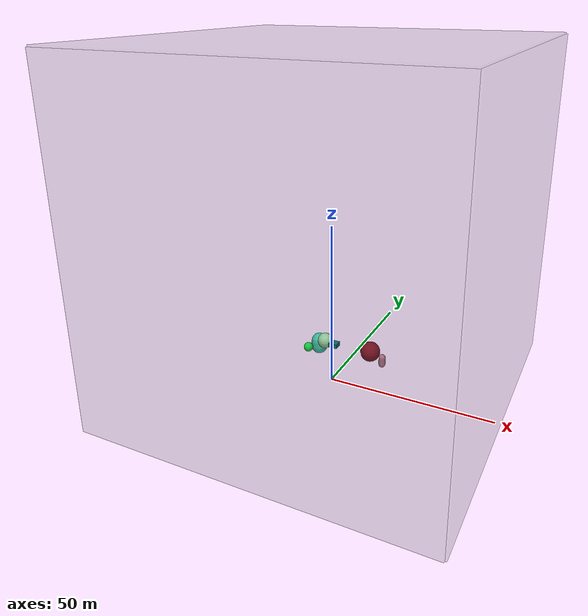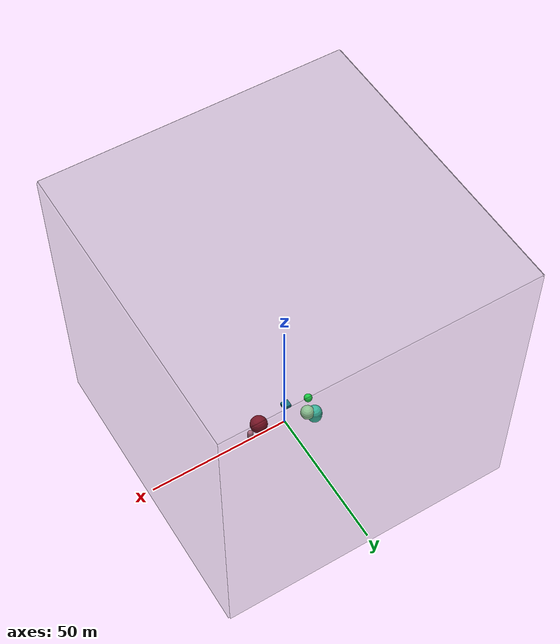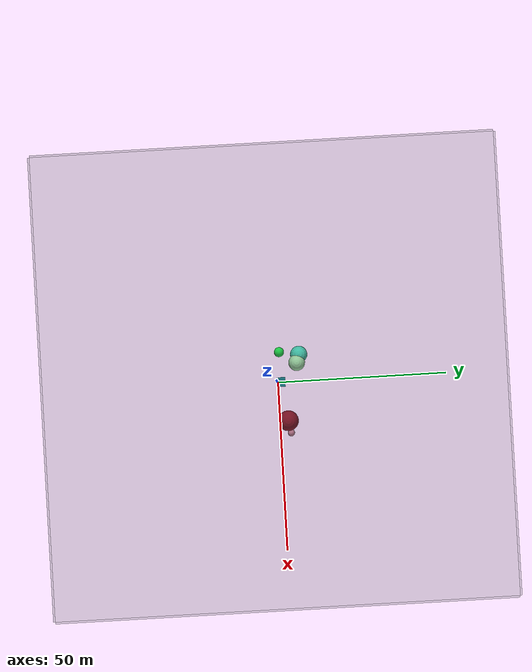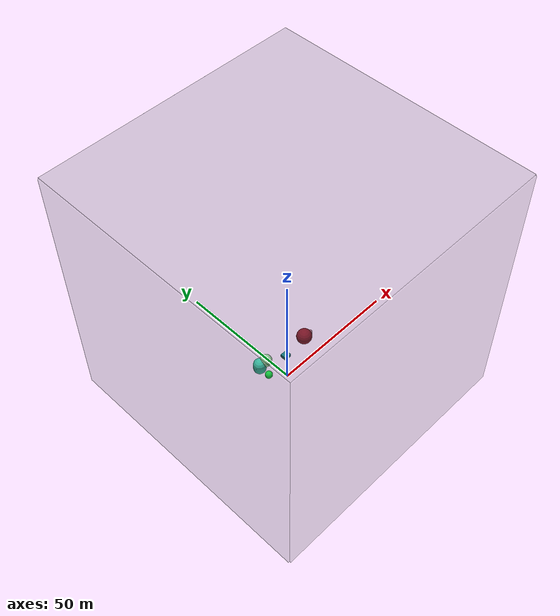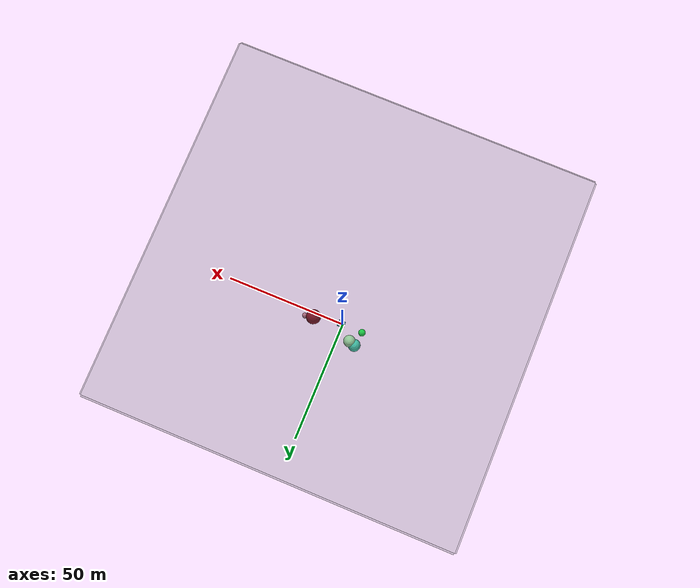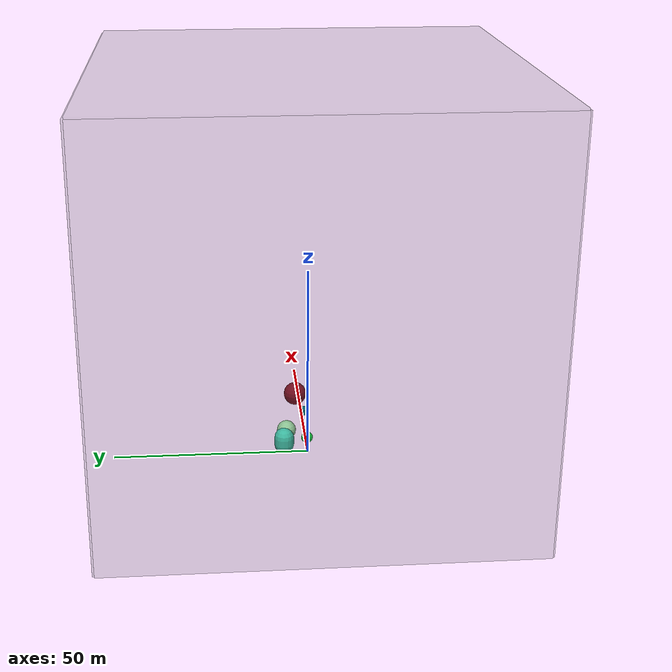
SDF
<!-- seed: 1722830644 -->
<sdf version='1.11'>
  <world name='world_0'>
    <gravity>0 0 -9.8066499999999994</gravity>
    <magnetic_field>5.5644999999999998e-06 2.2875799999999999e-05 -4.2388400000000002e-05</magnetic_field>
    <wind>
      <linear_velocity>9 10 4</linear_velocity>
    </wind>
    <physics default='false' type='ode'>
      <max_step_size>0.001</max_step_size>
      <real_time_factor>1</real_time_factor>
      <max_contacts>20</max_contacts>
    </physics>
    <model name='model_192'>
      <static>true</static>
      <self_collide>true</self_collide>
      <allow_auto_disable>true</allow_auto_disable>
      <enable_wind>false</enable_wind>
      <pose>-8.1267665934456481 1.7310664373982085 4.229556648156735 0 0 0</pose>
      <link name='link_861'>
        <pose>2.8632482332677593 4.150569444268017 5.0485948763134747 0 0 0</pose>
        <inertial>
          <pose>0 0 0 0 0 0</pose>
          <mass>1</mass>
          <inertia>
            <ixx>1</ixx>
            <ixy>0</ixy>
            <ixz>0</ixz>
            <iyy>1</iyy>
            <iyz>0</iyz>
            <izz>1</izz>
          </inertia>
        </inertial>
        <enable_wind>false</enable_wind>
        <collision name='collision_861'>
          <pose>0 0 0 0 0 0</pose>
          <geometry>
            <sphere>
              <radius>2.3902149975041675</radius>
            </sphere>
          </geometry>
          <surface>
            <contact>
              <collide_bitmask>255</collide_bitmask>
            </contact>
            <friction>
              <ode>
                <mu>1</mu>
                <mu2>1</mu2>
                <slip1>0</slip1>
                <slip2>0</slip2>
                <fdir1>0 0 0</fdir1>
              </ode>
            </friction>
          </surface>
        </collision>
        <visual name='visual_861'>
          <pose>0 0 0 0 0 0</pose>
          <geometry>
            <sphere>
              <radius>2.3902149975041675</radius>
            </sphere>
          </geometry>
          <cast_shadows>true</cast_shadows>
          <laser_retro>0</laser_retro>
          <transparency>0</transparency>
          <visibility_flags>4294967295</visibility_flags>
          <material>
            <ambient>0.664272249 0.922820389 0.69460994 1</ambient>
            <diffuse>0.664272249 0.922820389 0.69460994 1</diffuse>
            <specular>0 0 0 1</specular>
            <emissive>0 0 0 1</emissive>
            <render_order>0</render_order>
            <lighting>true</lighting>
            <double_sided>false</double_sided>
            <shader type='pixel'/>
          </material>
        </visual>
      </link>
      <link name='link_862'>
        <pose>-0.4770296230094484 -0.82106432591989886 4.4962877202266585 0 0 0</pose>
        <inertial>
          <pose>0 0 0 0 0 0</pose>
          <mass>1</mass>
          <inertia>
            <ixx>1</ixx>
            <ixy>0</ixy>
            <ixz>0</ixz>
            <iyy>1</iyy>
            <iyz>0</iyz>
            <izz>1</izz>
          </inertia>
        </inertial>
        <enable_wind>false</enable_wind>
        <collision name='collision_862'>
          <pose>0 0 0 0 0 0</pose>
          <geometry>
            <sphere>
              <radius>1.4177981688991268</radius>
            </sphere>
          </geometry>
          <surface>
            <contact>
              <collide_bitmask>255</collide_bitmask>
            </contact>
            <friction>
              <ode>
                <mu>1</mu>
                <mu2>1</mu2>
                <slip1>0</slip1>
                <slip2>0</slip2>
                <fdir1>0 0 0</fdir1>
              </ode>
            </friction>
          </surface>
        </collision>
        <visual name='visual_862'>
          <pose>0 0 0 0 0 0</pose>
          <geometry>
            <sphere>
              <radius>1.4177981688991268</radius>
            </sphere>
          </geometry>
          <cast_shadows>true</cast_shadows>
          <laser_retro>0</laser_retro>
          <transparency>0</transparency>
          <visibility_flags>4294967295</visibility_flags>
          <material>
            <ambient>0.0885012299 0.923571587 0.283256233 1</ambient>
            <diffuse>0.0885012299 0.923571587 0.283256233 1</diffuse>
            <specular>0 0 0 1</specular>
            <emissive>0 0 0 1</emissive>
            <render_order>0</render_order>
            <lighting>true</lighting>
            <double_sided>false</double_sided>
            <shader type='pixel'/>
          </material>
        </visual>
      </link>
      <link name='link_863'>
        <pose>0.50175265030856409 4.8631713575517068 3.2424583989642852 0 0 0</pose>
        <inertial>
          <pose>0 0 0 0 0 0</pose>
          <mass>1</mass>
          <inertia>
            <ixx>1</ixx>
            <ixy>0</ixy>
            <ixz>0</ixz>
            <iyy>1</iyy>
            <iyz>0</iyz>
            <izz>1</izz>
          </inertia>
        </inertial>
        <enable_wind>false</enable_wind>
        <collision name='collision_863'>
          <pose>0 0 0 0 0 0</pose>
          <geometry>
            <capsule>
              <radius>2.4691500168433955</radius>
              <length>1.742316190218073</length>
            </capsule>
          </geometry>
          <surface>
            <contact>
              <collide_bitmask>255</collide_bitmask>
            </contact>
            <friction>
              <ode>
                <mu>1</mu>
                <mu2>1</mu2>
                <slip1>0</slip1>
                <slip2>0</slip2>
                <fdir1>0 0 0</fdir1>
              </ode>
            </friction>
          </surface>
        </collision>
        <visual name='visual_863'>
          <pose>0 0 0 0 0 0</pose>
          <geometry>
            <capsule>
              <radius>2.4691500168433955</radius>
              <length>1.742316190218073</length>
            </capsule>
          </geometry>
          <cast_shadows>true</cast_shadows>
          <laser_retro>0</laser_retro>
          <transparency>0</transparency>
          <visibility_flags>4294967295</visibility_flags>
          <material>
            <ambient>0.267997622 0.867559254 0.750647068 1</ambient>
            <diffuse>0.267997622 0.867559254 0.750647068 1</diffuse>
            <specular>0 0 0 1</specular>
            <emissive>0 0 0 1</emissive>
            <render_order>0</render_order>
            <lighting>true</lighting>
            <double_sided>false</double_sided>
            <shader type='pixel'/>
          </material>
        </visual>
      </link>
      <joint name='joint_574' type='revolute'>
        <pose>0 0 0 0 0 0</pose>
        <parent>link_863</parent>
        <child>link_862</child>
        <axis>
          <xyz>0.69161695415816615 0.13278662841349295 0.7099533083489068</xyz>
          <limit>
            <lower>-inf</lower>
            <upper>inf</upper>
            <effort>inf</effort>
            <velocity>4.8633908988645196</velocity>
            <stiffness>100000000</stiffness>
            <dissipation>1</dissipation>
          </limit>
          <dynamics>
            <spring_reference>0</spring_reference>
            <spring_stiffness>0</spring_stiffness>
            <damping>0</damping>
            <friction>0</friction>
          </dynamics>
        </axis>
        <axis2>
          <xyz>0.54521877702104704 0.09432490165678678 0.83297016639920018</xyz>
          <limit>
            <lower>-inf</lower>
            <upper>inf</upper>
            <effort>inf</effort>
            <velocity>1.4744997987777375</velocity>
            <stiffness>100000000</stiffness>
            <dissipation>1</dissipation>
          </limit>
          <dynamics>
            <spring_reference>0</spring_reference>
            <spring_stiffness>0</spring_stiffness>
            <damping>0</damping>
            <friction>0</friction>
          </dynamics>
        </axis2>
      </joint>
      <joint name='joint_575' type='revolute'>
        <pose>0 0 0 0 0 0</pose>
        <parent>link_863</parent>
        <child>link_862</child>
        <axis>
          <xyz>0.26217133929081321 0.96438746000182785 0.034971643451291376</xyz>
          <limit>
            <lower>-inf</lower>
            <upper>inf</upper>
            <effort>inf</effort>
            <velocity>0.55892608577691183</velocity>
            <stiffness>100000000</stiffness>
            <dissipation>1</dissipation>
          </limit>
          <dynamics>
            <spring_reference>0</spring_reference>
            <spring_stiffness>0</spring_stiffness>
            <damping>0</damping>
            <friction>0</friction>
          </dynamics>
        </axis>
        <axis2>
          <xyz>0.32625812828144252 0.89971194020729295 0.28995526961708801</xyz>
          <limit>
            <lower>-inf</lower>
            <upper>inf</upper>
            <effort>inf</effort>
            <velocity>7.3626436983963286</velocity>
            <stiffness>100000000</stiffness>
            <dissipation>1</dissipation>
          </limit>
          <dynamics>
            <spring_reference>0</spring_reference>
            <spring_stiffness>0</spring_stiffness>
            <damping>0</damping>
            <friction>0</friction>
          </dynamics>
        </axis2>
      </joint>
    </model>
    <model name='model_193'>
      <static>false</static>
      <self_collide>true</self_collide>
      <allow_auto_disable>true</allow_auto_disable>
      <enable_wind>false</enable_wind>
      <pose>7.3142285350623517 5.4711880707363232 6.8352531634356817 0 0 0</pose>
      <link name='link_864'>
        <pose>7.6398290120932231 -2.271843046277926 1.8277624188501762 0 0 0</pose>
        <inertial>
          <pose>0 0 0 0 0 0</pose>
          <mass>1</mass>
          <inertia>
            <ixx>1</ixx>
            <ixy>0</ixy>
            <ixz>0</ixz>
            <iyy>1</iyy>
            <iyz>0</iyz>
            <izz>1</izz>
          </inertia>
        </inertial>
        <enable_wind>false</enable_wind>
        <collision name='collision_864'>
          <pose>0 0 0 0 0 0</pose>
          <geometry>
            <capsule>
              <radius>1.0019158932273204</radius>
              <length>2.1546517352572367</length>
            </capsule>
          </geometry>
          <surface>
            <contact>
              <collide_bitmask>255</collide_bitmask>
            </contact>
            <friction>
              <ode>
                <mu>1</mu>
                <mu2>1</mu2>
                <slip1>0</slip1>
                <slip2>0</slip2>
                <fdir1>0 0 0</fdir1>
              </ode>
            </friction>
          </surface>
        </collision>
        <visual name='visual_864'>
          <pose>0 0 0 0 0 0</pose>
          <geometry>
            <capsule>
              <radius>1.0019158932273204</radius>
              <length>2.1546517352572367</length>
            </capsule>
          </geometry>
          <cast_shadows>true</cast_shadows>
          <laser_retro>0</laser_retro>
          <transparency>0</transparency>
          <visibility_flags>4294967295</visibility_flags>
          <material>
            <ambient>0.783004045 0.480386436 0.580207705 1</ambient>
            <diffuse>0.783004045 0.480386436 0.580207705 1</diffuse>
            <specular>0 0 0 1</specular>
            <emissive>0 0 0 1</emissive>
            <render_order>0</render_order>
            <lighting>true</lighting>
            <double_sided>false</double_sided>
            <shader type='pixel'/>
          </material>
        </visual>
      </link>
      <link name='link_865'>
        <pose>-7.1672427866780941 -4.4618880058677597 4.8878558837985997 0 0 0</pose>
        <inertial>
          <pose>0 0 0 0 0 0</pose>
          <mass>1</mass>
          <inertia>
            <ixx>1</ixx>
            <ixy>0</ixy>
            <ixz>0</ixz>
            <iyy>1</iyy>
            <iyz>0</iyz>
            <izz>1</izz>
          </inertia>
        </inertial>
        <enable_wind>false</enable_wind>
        <collision name='collision_865'>
          <pose>0 0 0 0 0 0</pose>
          <geometry>
            <box>
              <size>2.6866038648543134 2.4336528252930951 1.2804812812571653</size>
            </box>
          </geometry>
          <surface>
            <contact>
              <collide_bitmask>255</collide_bitmask>
            </contact>
            <friction>
              <ode>
                <mu>1</mu>
                <mu2>1</mu2>
                <slip1>0</slip1>
                <slip2>0</slip2>
                <fdir1>0 0 0</fdir1>
              </ode>
            </friction>
          </surface>
        </collision>
        <visual name='visual_865'>
          <pose>0 0 0 0 0 0</pose>
          <geometry>
            <box>
              <size>2.6866038648543134 2.4336528252930951 1.2804812812571653</size>
            </box>
          </geometry>
          <cast_shadows>true</cast_shadows>
          <laser_retro>0</laser_retro>
          <transparency>0</transparency>
          <visibility_flags>4294967295</visibility_flags>
          <material>
            <ambient>0.0543567762 0.488732189 0.535226047 1</ambient>
            <diffuse>0.0543567762 0.488732189 0.535226047 1</diffuse>
            <specular>0 0 0 1</specular>
            <emissive>0 0 0 1</emissive>
            <render_order>0</render_order>
            <lighting>true</lighting>
            <double_sided>false</double_sided>
            <shader type='pixel'/>
          </material>
        </visual>
      </link>
      <link name='link_866'>
        <pose>4.0650142515832233 -2.941478435329989 4.4217371346891001 0 0 0</pose>
        <inertial>
          <pose>0 0 0 0 0 0</pose>
          <mass>1</mass>
          <inertia>
            <ixx>1</ixx>
            <ixy>0</ixy>
            <ixz>0</ixz>
            <iyy>1</iyy>
            <iyz>0</iyz>
            <izz>1</izz>
          </inertia>
        </inertial>
        <enable_wind>false</enable_wind>
        <collision name='collision_866'>
          <pose>0 0 0 0 0 0</pose>
          <geometry>
            <sphere>
              <radius>2.9518707791095489</radius>
            </sphere>
          </geometry>
          <surface>
            <contact>
              <collide_bitmask>255</collide_bitmask>
            </contact>
            <friction>
              <ode>
                <mu>1</mu>
                <mu2>1</mu2>
                <slip1>0</slip1>
                <slip2>0</slip2>
                <fdir1>0 0 0</fdir1>
              </ode>
            </friction>
          </surface>
        </collision>
        <visual name='visual_866'>
          <pose>0 0 0 0 0 0</pose>
          <geometry>
            <sphere>
              <radius>2.9518707791095489</radius>
            </sphere>
          </geometry>
          <cast_shadows>true</cast_shadows>
          <laser_retro>0</laser_retro>
          <transparency>0</transparency>
          <visibility_flags>4294967295</visibility_flags>
          <material>
            <ambient>0.534518003 0.0545169897 0.13547495 1</ambient>
            <diffuse>0.534518003 0.0545169897 0.13547495 1</diffuse>
            <specular>0 0 0 1</specular>
            <emissive>0 0 0 1</emissive>
            <render_order>0</render_order>
            <lighting>true</lighting>
            <double_sided>false</double_sided>
            <shader type='pixel'/>
          </material>
        </visual>
      </link>
      <joint name='joint_576' type='revolute'>
        <pose>0 0 0 0 0 0</pose>
        <parent>link_864</parent>
        <child>link_866</child>
        <axis>
          <xyz>0.4600776466047769 0.54885921607300792 0.69791268796772366</xyz>
          <limit>
            <lower>-inf</lower>
            <upper>inf</upper>
            <effort>inf</effort>
            <velocity>8.31769713213329</velocity>
            <stiffness>100000000</stiffness>
            <dissipation>1</dissipation>
          </limit>
          <dynamics>
            <spring_reference>0</spring_reference>
            <spring_stiffness>0</spring_stiffness>
            <damping>0</damping>
            <friction>0</friction>
          </dynamics>
        </axis>
        <axis2>
          <xyz>0.37063705960840543 0.33436567545372115 0.86650318240801172</xyz>
          <limit>
            <lower>-inf</lower>
            <upper>inf</upper>
            <effort>inf</effort>
            <velocity>7.4000375500981601</velocity>
            <stiffness>100000000</stiffness>
            <dissipation>1</dissipation>
          </limit>
          <dynamics>
            <spring_reference>0</spring_reference>
            <spring_stiffness>0</spring_stiffness>
            <damping>0</damping>
            <friction>0</friction>
          </dynamics>
        </axis2>
      </joint>
      <joint name='joint_577' type='fixed'>
        <pose>0 0 0 0 0 0</pose>
        <parent>link_865</parent>
        <child>link_866</child>
        <axis>
          <xyz>0.71145523317095516 0.30875838608277095 0.6312683345592619</xyz>
          <limit>
            <lower>-inf</lower>
            <upper>inf</upper>
            <effort>inf</effort>
            <velocity>4.4687614365336392</velocity>
            <stiffness>100000000</stiffness>
            <dissipation>1</dissipation>
          </limit>
          <dynamics>
            <spring_reference>0</spring_reference>
            <spring_stiffness>0</spring_stiffness>
            <damping>0</damping>
            <friction>0</friction>
          </dynamics>
        </axis>
        <axis2>
          <xyz>0.86028588426390629 0.17780482962684133 0.47780083706251392</xyz>
          <limit>
            <lower>-inf</lower>
            <upper>inf</upper>
            <effort>inf</effort>
            <velocity>6.686474425905371</velocity>
            <stiffness>100000000</stiffness>
            <dissipation>1</dissipation>
          </limit>
          <dynamics>
            <spring_reference>0</spring_reference>
            <spring_stiffness>0</spring_stiffness>
            <damping>0</damping>
            <friction>0</friction>
          </dynamics>
        </axis2>
      </joint>
    </model>
    <model name='ground_model'>
      <static>true</static>
      <self_collide>false</self_collide>
      <allow_auto_disable>true</allow_auto_disable>
      <enable_wind>false</enable_wind>
      <pose>0 0 0 0 0 0</pose>
      <link name='ground_link'>
        <pose>0 0 0 0 0 0</pose>
        <inertial>
          <pose>0 0 0 0 0 0</pose>
          <mass>1</mass>
          <inertia>
            <ixx>1</ixx>
            <ixy>0</ixy>
            <ixz>0</ixz>
            <iyy>1</iyy>
            <iyz>0</iyz>
            <izz>1</izz>
          </inertia>
        </inertial>
        <enable_wind>false</enable_wind>
        <collision name='ground_collision'>
          <pose>0 0 0 0 0 0</pose>
          <geometry>
            <plane>
              <normal>0 0 1</normal>
              <size>100 100</size>
            </plane>
          </geometry>
          <surface>
            <contact>
              <collide_bitmask>255</collide_bitmask>
            </contact>
            <friction>
              <ode>
                <mu>1</mu>
                <mu2>1</mu2>
                <slip1>0</slip1>
                <slip2>0</slip2>
                <fdir1>0 0 0</fdir1>
              </ode>
            </friction>
          </surface>
        </collision>
      </link>
    </model>
    <model name='ceiling_model'>
      <static>true</static>
      <self_collide>false</self_collide>
      <allow_auto_disable>true</allow_auto_disable>
      <enable_wind>false</enable_wind>
      <pose>0 0 100 0 0 0</pose>
      <link name='ceiling_link'>
        <pose>0 0 0 0 0 0</pose>
        <inertial>
          <pose>0 0 0 0 0 0</pose>
          <mass>1</mass>
          <inertia>
            <ixx>1</ixx>
            <ixy>0</ixy>
            <ixz>0</ixz>
            <iyy>1</iyy>
            <iyz>0</iyz>
            <izz>1</izz>
          </inertia>
        </inertial>
        <enable_wind>false</enable_wind>
        <collision name='ceiling_collision'>
          <pose>0 0 0 0 0 0</pose>
          <geometry>
            <box>
              <size>102 102 3</size>
            </box>
          </geometry>
          <surface>
            <contact>
              <collide_bitmask>255</collide_bitmask>
            </contact>
            <friction>
              <ode>
                <mu>1</mu>
                <mu2>1</mu2>
                <slip1>0</slip1>
                <slip2>0</slip2>
                <fdir1>0 0 0</fdir1>
              </ode>
            </friction>
          </surface>
        </collision>
        <visual name='ceiling_visual'>
          <pose>0 0 0 0 0 0</pose>
          <geometry>
            <box>
              <size>102 102 3</size>
            </box>
          </geometry>
          <cast_shadows>true</cast_shadows>
          <laser_retro>0</laser_retro>
          <transparency>0</transparency>
          <visibility_flags>4294967295</visibility_flags>
          <material>
            <ambient>0.200000003 0.200000003 0.200000003 0.200000003</ambient>
            <diffuse>0.200000003 0.200000003 0.200000003 0.200000003</diffuse>
            <specular>0 0 0 1</specular>
            <emissive>0 0 0 1</emissive>
            <render_order>0</render_order>
            <lighting>true</lighting>
            <double_sided>false</double_sided>
            <shader type='pixel'/>
          </material>
        </visual>
      </link>
    </model>
    <model name='west_model'>
      <static>true</static>
      <self_collide>false</self_collide>
      <allow_auto_disable>true</allow_auto_disable>
      <enable_wind>false</enable_wind>
      <pose>0 50 50 0 0 0</pose>
      <link name='west_link'>
        <pose>0 0 0 0 0 0</pose>
        <inertial>
          <pose>0 0 0 0 0 0</pose>
          <mass>1</mass>
          <inertia>
            <ixx>1</ixx>
            <ixy>0</ixy>
            <ixz>0</ixz>
            <iyy>1</iyy>
            <iyz>0</iyz>
            <izz>1</izz>
          </inertia>
        </inertial>
        <enable_wind>false</enable_wind>
        <collision name='west_collision'>
          <pose>0 0 0 0 0 0</pose>
          <geometry>
            <box>
              <size>102 3 102</size>
            </box>
          </geometry>
          <surface>
            <contact>
              <collide_bitmask>255</collide_bitmask>
            </contact>
            <friction>
              <ode>
                <mu>1</mu>
                <mu2>1</mu2>
                <slip1>0</slip1>
                <slip2>0</slip2>
                <fdir1>0 0 0</fdir1>
              </ode>
            </friction>
          </surface>
        </collision>
        <visual name='west_visual'>
          <pose>0 0 0 0 0 0</pose>
          <geometry>
            <box>
              <size>102 3 102</size>
            </box>
          </geometry>
          <cast_shadows>true</cast_shadows>
          <laser_retro>0</laser_retro>
          <transparency>0</transparency>
          <visibility_flags>4294967295</visibility_flags>
          <material>
            <ambient>0.200000003 0.200000003 0.200000003 0.200000003</ambient>
            <diffuse>0.200000003 0.200000003 0.200000003 0.200000003</diffuse>
            <specular>0 0 0 1</specular>
            <emissive>0 0 0 1</emissive>
            <render_order>0</render_order>
            <lighting>true</lighting>
            <double_sided>false</double_sided>
            <shader type='pixel'/>
          </material>
        </visual>
      </link>
    </model>
    <model name='east_model'>
      <static>true</static>
      <self_collide>false</self_collide>
      <allow_auto_disable>true</allow_auto_disable>
      <enable_wind>false</enable_wind>
      <pose>0 -50 50 0 0 0</pose>
      <link name='east_link'>
        <pose>0 0 0 0 0 0</pose>
        <inertial>
          <pose>0 0 0 0 0 0</pose>
          <mass>1</mass>
          <inertia>
            <ixx>1</ixx>
            <ixy>0</ixy>
            <ixz>0</ixz>
            <iyy>1</iyy>
            <iyz>0</iyz>
            <izz>1</izz>
          </inertia>
        </inertial>
        <enable_wind>false</enable_wind>
        <collision name='east_collision'>
          <pose>0 0 0 0 0 0</pose>
          <geometry>
            <box>
              <size>102 3 102</size>
            </box>
          </geometry>
          <surface>
            <contact>
              <collide_bitmask>255</collide_bitmask>
            </contact>
            <friction>
              <ode>
                <mu>1</mu>
                <mu2>1</mu2>
                <slip1>0</slip1>
                <slip2>0</slip2>
                <fdir1>0 0 0</fdir1>
              </ode>
            </friction>
          </surface>
        </collision>
        <visual name='east_visual'>
          <pose>0 0 0 0 0 0</pose>
          <geometry>
            <box>
              <size>102 3 102</size>
            </box>
          </geometry>
          <cast_shadows>true</cast_shadows>
          <laser_retro>0</laser_retro>
          <transparency>0</transparency>
          <visibility_flags>4294967295</visibility_flags>
          <material>
            <ambient>0.200000003 0.200000003 0.200000003 0.200000003</ambient>
            <diffuse>0.200000003 0.200000003 0.200000003 0.200000003</diffuse>
            <specular>0 0 0 1</specular>
            <emissive>0 0 0 1</emissive>
            <render_order>0</render_order>
            <lighting>true</lighting>
            <double_sided>false</double_sided>
            <shader type='pixel'/>
          </material>
        </visual>
      </link>
    </model>
    <model name='north_model'>
      <static>true</static>
      <self_collide>false</self_collide>
      <allow_auto_disable>true</allow_auto_disable>
      <enable_wind>false</enable_wind>
      <pose>50 0 50 0 0 0</pose>
      <link name='north_link'>
        <pose>0 0 0 0 0 0</pose>
        <inertial>
          <pose>0 0 0 0 0 0</pose>
          <mass>1</mass>
          <inertia>
            <ixx>1</ixx>
            <ixy>0</ixy>
            <ixz>0</ixz>
            <iyy>1</iyy>
            <iyz>0</iyz>
            <izz>1</izz>
          </inertia>
        </inertial>
        <enable_wind>false</enable_wind>
        <collision name='north_collision'>
          <pose>0 0 0 0 0 0</pose>
          <geometry>
            <box>
              <size>3 102 102</size>
            </box>
          </geometry>
          <surface>
            <contact>
              <collide_bitmask>255</collide_bitmask>
            </contact>
            <friction>
              <ode>
                <mu>1</mu>
                <mu2>1</mu2>
                <slip1>0</slip1>
                <slip2>0</slip2>
                <fdir1>0 0 0</fdir1>
              </ode>
            </friction>
          </surface>
        </collision>
        <visual name='north_visual'>
          <pose>0 0 0 0 0 0</pose>
          <geometry>
            <box>
              <size>3 102 102</size>
            </box>
          </geometry>
          <cast_shadows>true</cast_shadows>
          <laser_retro>0</laser_retro>
          <transparency>0</transparency>
          <visibility_flags>4294967295</visibility_flags>
          <material>
            <ambient>0.200000003 0.200000003 0.200000003 0.200000003</ambient>
            <diffuse>0.200000003 0.200000003 0.200000003 0.200000003</diffuse>
            <specular>0 0 0 1</specular>
            <emissive>0 0 0 1</emissive>
            <render_order>0</render_order>
            <lighting>true</lighting>
            <double_sided>false</double_sided>
            <shader type='pixel'/>
          </material>
        </visual>
      </link>
    </model>
    <model name='south_model'>
      <static>true</static>
      <self_collide>false</self_collide>
      <allow_auto_disable>true</allow_auto_disable>
      <enable_wind>false</enable_wind>
      <pose>-50 0 50 0 0 0</pose>
      <link name='south_link'>
        <pose>0 0 0 0 0 0</pose>
        <inertial>
          <pose>0 0 0 0 0 0</pose>
          <mass>1</mass>
          <inertia>
            <ixx>1</ixx>
            <ixy>0</ixy>
            <ixz>0</ixz>
            <iyy>1</iyy>
            <iyz>0</iyz>
            <izz>1</izz>
          </inertia>
        </inertial>
        <enable_wind>false</enable_wind>
        <collision name='south_collision'>
          <pose>0 0 0 0 0 0</pose>
          <geometry>
            <box>
              <size>3 102 102</size>
            </box>
          </geometry>
          <surface>
            <contact>
              <collide_bitmask>255</collide_bitmask>
            </contact>
            <friction>
              <ode>
                <mu>1</mu>
                <mu2>1</mu2>
                <slip1>0</slip1>
                <slip2>0</slip2>
                <fdir1>0 0 0</fdir1>
              </ode>
            </friction>
          </surface>
        </collision>
        <visual name='south_visual'>
          <pose>0 0 0 0 0 0</pose>
          <geometry>
            <box>
              <size>3 102 102</size>
            </box>
          </geometry>
          <cast_shadows>true</cast_shadows>
          <laser_retro>0</laser_retro>
          <transparency>0</transparency>
          <visibility_flags>4294967295</visibility_flags>
          <material>
            <ambient>0.200000003 0.200000003 0.200000003 0.200000003</ambient>
            <diffuse>0.200000003 0.200000003 0.200000003 0.200000003</diffuse>
            <specular>0 0 0 1</specular>
            <emissive>0 0 0 1</emissive>
            <render_order>0</render_order>
            <lighting>true</lighting>
            <double_sided>false</double_sided>
            <shader type='pixel'/>
          </material>
        </visual>
      </link>
    </model>
    <atmosphere type='adiabatic'>
      <temperature>288.14999999999998</temperature>
      <pressure>101325</pressure>
      <temperature_gradient>-0.0064999999999999997</temperature_gradient>
    </atmosphere>
    <scene>
      <ambient>0.400000006 0.400000006 0.400000006 1</ambient>
      <background>0.699999988 0.699999988 0.699999988 1</background>
      <grid>true</grid>
      <origin_visual>true</origin_visual>
      <shadows>true</shadows>
    </scene>
  </world>
</sdf>
